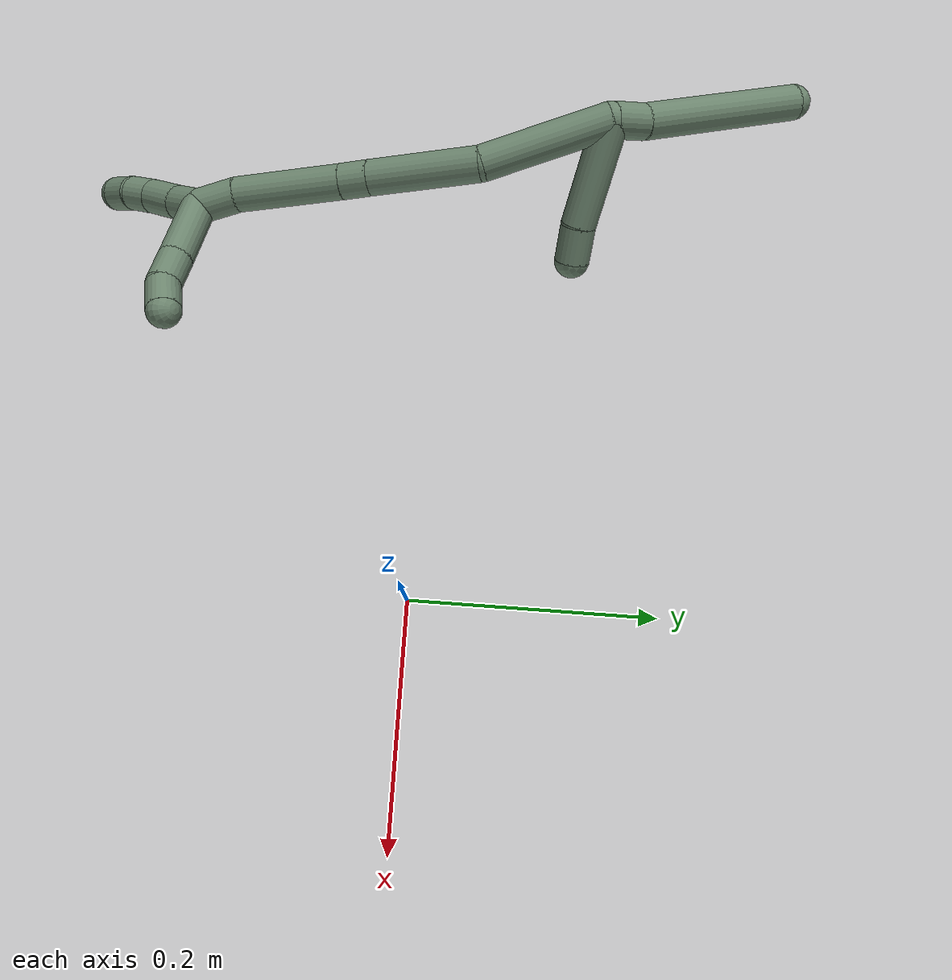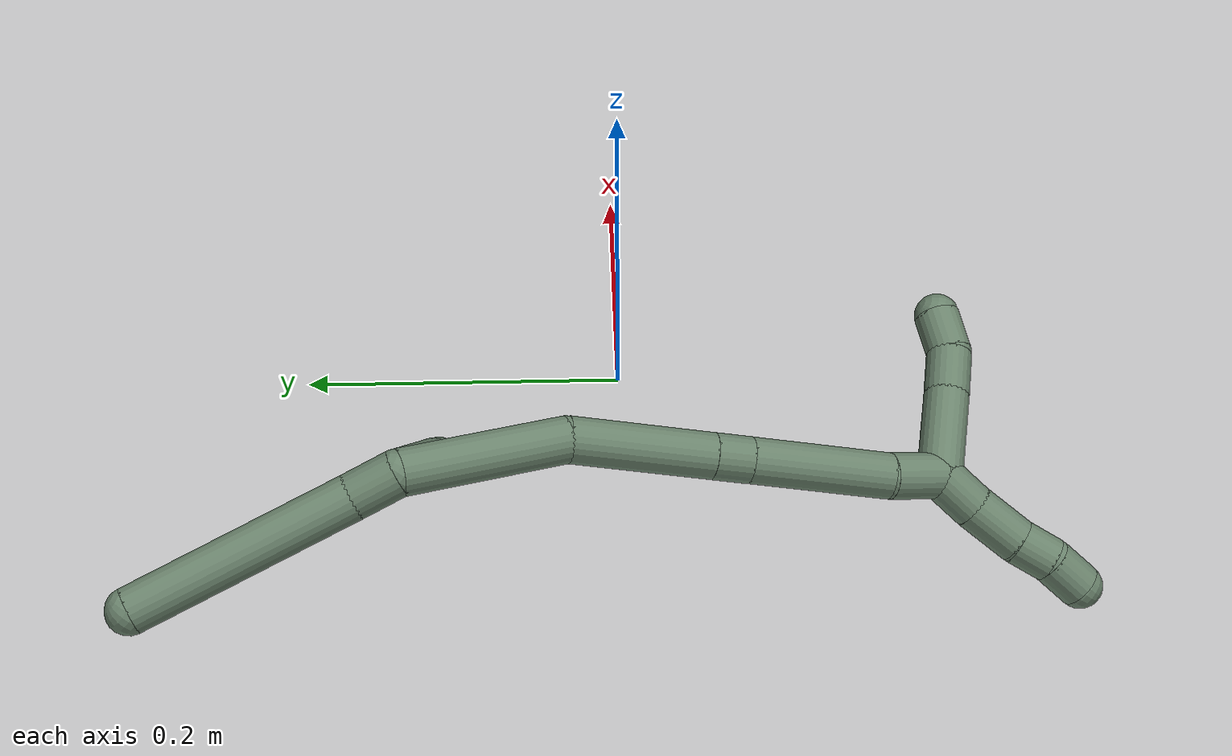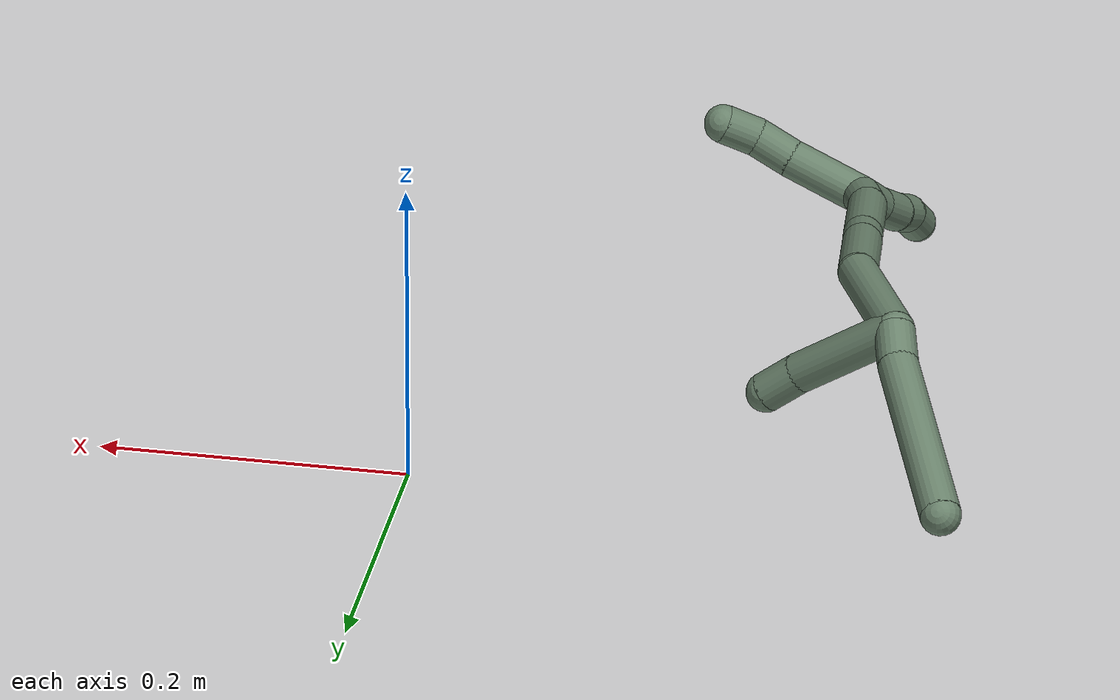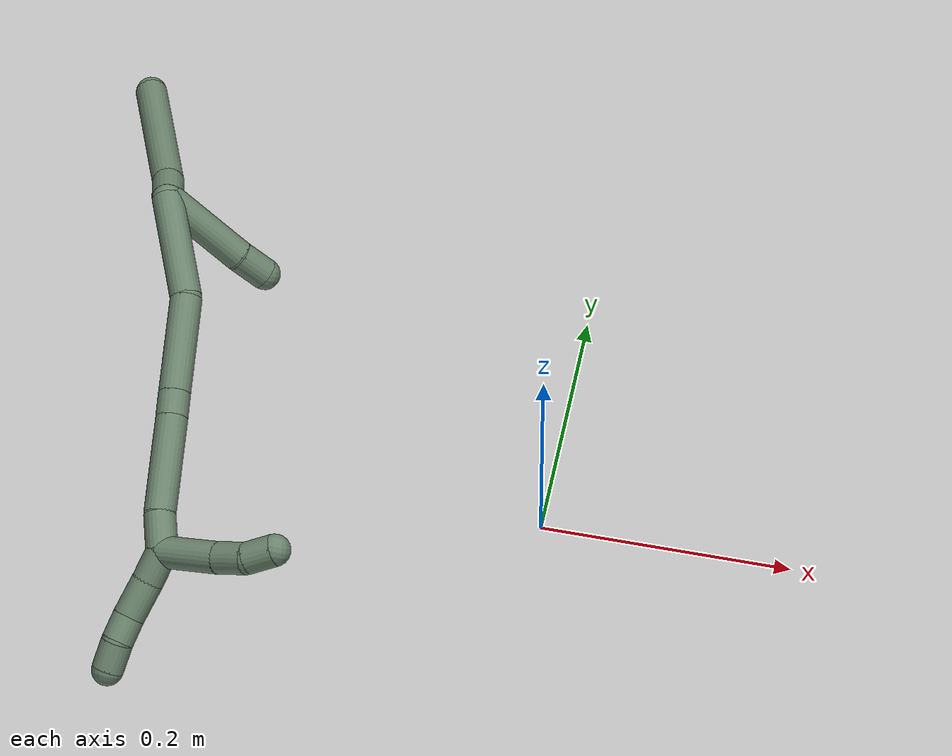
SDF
<sdf version="1.7">
 <world name="default">
  <model name="17">
   <static>0</static>
   <link name="17">
    <collision name="collision-cylinder-e_1_2_8">
     <pose>0.004121 0.011134 0.005481 -1.11333 0.320588 -0.200558</pose>
     <geometry><cylinder><radius>0.0125</radius><length>0.026153</length></cylinder></geometry>
     <surface>
      <friction><ode><mu>1.16</mu><mu2>1.16</mu2><slip1>0</slip1><slip2>0</slip2></ode></friction>
      <contact><ode><kp>1e+06</kp><kd>1</kd><max_vel>0</max_vel><min_depth>0.001</min_depth></ode></contact>
     </surface>
    </collision>
    <visual name="visual-cylinder-e_1_2_8">
     <pose>0.004121 0.011134 0.005481 -1.11333 0.320588 -0.200558</pose>
     <geometry><cylinder><radius>0.0125</radius><length>0.026153</length></cylinder></geometry>
     <material><ambient>0.415686 0.509804 0.423529 1</ambient></material>
    </visual>
    <collision name="collision-cylinder-e_2_8_6">
     <pose>0.018593 0.075475 0.040903 -1.05823 0.167957 -0.098362</pose>
     <geometry><cylinder><radius>0.0125</radius><length>0.123847</length></cylinder></geometry>
     <surface>
      <friction><ode><mu>1.16</mu><mu2>1.16</mu2><slip1>0</slip1><slip2>0</slip2></ode></friction>
      <contact><ode><kp>1e+06</kp><kd>1</kd><max_vel>0</max_vel><min_depth>0.001</min_depth></ode></contact>
     </surface>
    </collision>
    <visual name="visual-cylinder-e_2_8_6">
     <pose>0.018593 0.075475 0.040903 -1.05823 0.167957 -0.098362</pose>
     <geometry><cylinder><radius>0.0125</radius><length>0.123847</length></cylinder></geometry>
     <material><ambient>0.415686 0.509804 0.423529 1</ambient></material>
    </visual>
    <collision name="collision-cylinder-e_1_2_9">
     <pose>0.031944 -0.008029 -0.016837 2.69661 1.04228 2.39079</pose>
     <geometry><cylinder><radius>0.0125</radius><length>0.073983</length></cylinder></geometry>
     <surface>
      <friction><ode><mu>1.16</mu><mu2>1.16</mu2><slip1>0</slip1><slip2>0</slip2></ode></friction>
      <contact><ode><kp>1e+06</kp><kd>1</kd><max_vel>0</max_vel><min_depth>0.001</min_depth></ode></contact>
     </surface>
    </collision>
    <visual name="visual-cylinder-e_1_2_9">
     <pose>0.031944 -0.008029 -0.016837 2.69661 1.04228 2.39079</pose>
     <geometry><cylinder><radius>0.0125</radius><length>0.073983</length></cylinder></geometry>
     <material><ambient>0.415686 0.509804 0.423529 1</ambient></material>
    </visual>
    <collision name="collision-cylinder-e_2_9_5">
     <pose>0.075776 -0.01748 -0.038762 2.86921 1.15252 2.72591</pose>
     <geometry><cylinder><radius>0.0125</radius><length>0.026017</length></cylinder></geometry>
     <surface>
      <friction><ode><mu>1.16</mu><mu2>1.16</mu2><slip1>0</slip1><slip2>0</slip2></ode></friction>
      <contact><ode><kp>1e+06</kp><kd>1</kd><max_vel>0</max_vel><min_depth>0.001</min_depth></ode></contact>
     </surface>
    </collision>
    <visual name="visual-cylinder-e_2_9_5">
     <pose>0.075776 -0.01748 -0.038762 2.86921 1.15252 2.72591</pose>
     <geometry><cylinder><radius>0.0125</radius><length>0.026017</length></cylinder></geometry>
     <material><ambient>0.415686 0.509804 0.423529 1</ambient></material>
    </visual>
    <collision name="collision-cylinder-e_1_2_10">
     <pose>0.001849 -0.030551 -0.034499 2.41682 0.040094 0.105668</pose>
     <geometry><cylinder><radius>0.0125</radius><length>0.092239</length></cylinder></geometry>
     <surface>
      <friction><ode><mu>1.16</mu><mu2>1.16</mu2><slip1>0</slip1><slip2>0</slip2></ode></friction>
      <contact><ode><kp>1e+06</kp><kd>1</kd><max_vel>0</max_vel><min_depth>0.001</min_depth></ode></contact>
     </surface>
    </collision>
    <visual name="visual-cylinder-e_1_2_10">
     <pose>0.001849 -0.030551 -0.034499 2.41682 0.040094 0.105668</pose>
     <geometry><cylinder><radius>0.0125</radius><length>0.092239</length></cylinder></geometry>
     <material><ambient>0.415686 0.509804 0.423529 1</ambient></material>
    </visual>
    <collision name="collision-cylinder-e_2_10_11">
     <pose>-0.001027 -0.078107 -0.104227 2.69187 -0.120185 -0.514425</pose>
     <geometry><cylinder><radius>0.0125</radius><length>0.078805</length></cylinder></geometry>
     <surface>
      <friction><ode><mu>1.16</mu><mu2>1.16</mu2><slip1>0</slip1><slip2>0</slip2></ode></friction>
      <contact><ode><kp>1e+06</kp><kd>1</kd><max_vel>0</max_vel><min_depth>0.001</min_depth></ode></contact>
     </surface>
    </collision>
    <visual name="visual-cylinder-e_2_10_11">
     <pose>-0.001027 -0.078107 -0.104227 2.69187 -0.120185 -0.514425</pose>
     <geometry><cylinder><radius>0.0125</radius><length>0.078805</length></cylinder></geometry>
     <material><ambient>0.415686 0.509804 0.423529 1</ambient></material>
    </visual>
    <collision name="collision-cylinder-e_3_11_12">
     <pose>-0.006846 -0.099494 -0.148527 2.69164 -0.108287 -0.465068</pose>
     <geometry><cylinder><radius>0.0125</radius><length>0.020266</length></cylinder></geometry>
     <surface>
      <friction><ode><mu>1.16</mu><mu2>1.16</mu2><slip1>0</slip1><slip2>0</slip2></ode></friction>
      <contact><ode><kp>1e+06</kp><kd>1</kd><max_vel>0</max_vel><min_depth>0.001</min_depth></ode></contact>
     </surface>
    </collision>
    <visual name="visual-cylinder-e_3_11_12">
     <pose>-0.006846 -0.099494 -0.148527 2.69164 -0.108287 -0.465068</pose>
     <geometry><cylinder><radius>0.0125</radius><length>0.020266</length></cylinder></geometry>
     <material><ambient>0.415686 0.509804 0.423529 1</ambient></material>
    </visual>
    <collision name="collision-cylinder-e_4_12_13">
     <pose>-0.012729 -0.120805 -0.192642 2.69156 -0.122398 -0.523147</pose>
     <geometry><cylinder><radius>0.0125</radius><length>0.078424</length></cylinder></geometry>
     <surface>
      <friction><ode><mu>1.16</mu><mu2>1.16</mu2><slip1>0</slip1><slip2>0</slip2></ode></friction>
      <contact><ode><kp>1e+06</kp><kd>1</kd><max_vel>0</max_vel><min_depth>0.001</min_depth></ode></contact>
     </surface>
    </collision>
    <visual name="visual-cylinder-e_4_12_13">
     <pose>-0.012729 -0.120805 -0.192642 2.69156 -0.122398 -0.523147</pose>
     <geometry><cylinder><radius>0.0125</radius><length>0.078424</length></cylinder></geometry>
     <material><ambient>0.415686 0.509804 0.423529 1</ambient></material>
    </visual>
    <collision name="collision-cylinder-e_5_13_1">
     <pose>-0.01711 -0.145535 -0.240646 2.59979 0.026863 0.096654</pose>
     <geometry><cylinder><radius>0.0125</radius><length>0.030266</length></cylinder></geometry>
     <surface>
      <friction><ode><mu>1.16</mu><mu2>1.16</mu2><slip1>0</slip1><slip2>0</slip2></ode></friction>
      <contact><ode><kp>1e+06</kp><kd>1</kd><max_vel>0</max_vel><min_depth>0.001</min_depth></ode></contact>
     </surface>
    </collision>
    <visual name="visual-cylinder-e_5_13_1">
     <pose>-0.01711 -0.145535 -0.240646 2.59979 0.026863 0.096654</pose>
     <geometry><cylinder><radius>0.0125</radius><length>0.030266</length></cylinder></geometry>
     <material><ambient>0.415686 0.509804 0.423529 1</ambient></material>
    </visual>
    <collision name="collision-cylinder-e_1_1_14">
     <pose>-0.019042 -0.15133 -0.265886 -2.97963 -0.185759 1.70816</pose>
     <geometry><cylinder><radius>0.0125</radius><length>0.025318</length></cylinder></geometry>
     <surface>
      <friction><ode><mu>1.16</mu><mu2>1.16</mu2><slip1>0</slip1><slip2>0</slip2></ode></friction>
      <contact><ode><kp>1e+06</kp><kd>1</kd><max_vel>0</max_vel><min_depth>0.001</min_depth></ode></contact>
     </surface>
    </collision>
    <visual name="visual-cylinder-e_1_1_14">
     <pose>-0.019042 -0.15133 -0.265886 -2.97963 -0.185759 1.70816</pose>
     <geometry><cylinder><radius>0.0125</radius><length>0.025318</length></cylinder></geometry>
     <material><ambient>0.415686 0.509804 0.423529 1</ambient></material>
    </visual>
    <collision name="collision-cylinder-e_2_14_15">
     <pose>-0.025301 -0.147886 -0.292963 -3.04472 -0.257897 2.42609</pose>
     <geometry><cylinder><radius>0.0125</radius><length>0.030754</length></cylinder></geometry>
     <surface>
      <friction><ode><mu>1.16</mu><mu2>1.16</mu2><slip1>0</slip1><slip2>0</slip2></ode></friction>
      <contact><ode><kp>1e+06</kp><kd>1</kd><max_vel>0</max_vel><min_depth>0.001</min_depth></ode></contact>
     </surface>
    </collision>
    <visual name="visual-cylinder-e_2_14_15">
     <pose>-0.025301 -0.147886 -0.292963 -3.04472 -0.257897 2.42609</pose>
     <geometry><cylinder><radius>0.0125</radius><length>0.030754</length></cylinder></geometry>
     <material><ambient>0.415686 0.509804 0.423529 1</ambient></material>
    </visual>
    <collision name="collision-cylinder-e_3_15_16">
     <pose>-0.031978 -0.146957 -0.317871 3.09121 -0.265667 -2.76881</pose>
     <geometry><cylinder><radius>0.0125</radius><length>0.020979</length></cylinder></geometry>
     <surface>
      <friction><ode><mu>1.16</mu><mu2>1.16</mu2><slip1>0</slip1><slip2>0</slip2></ode></friction>
      <contact><ode><kp>1e+06</kp><kd>1</kd><max_vel>0</max_vel><min_depth>0.001</min_depth></ode></contact>
     </surface>
    </collision>
    <visual name="visual-cylinder-e_3_15_16">
     <pose>-0.031978 -0.146957 -0.317871 3.09121 -0.265667 -2.76881</pose>
     <geometry><cylinder><radius>0.0125</radius><length>0.020979</length></cylinder></geometry>
     <material><ambient>0.415686 0.509804 0.423529 1</ambient></material>
    </visual>
    <collision name="collision-cylinder-e_4_16_4">
     <pose>-0.035601 -0.146125 -0.339342 -3.02404 -0.075802 1.14482</pose>
     <geometry><cylinder><radius>0.0125</radius><length>0.022948</length></cylinder></geometry>
     <surface>
      <friction><ode><mu>1.16</mu><mu2>1.16</mu2><slip1>0</slip1><slip2>0</slip2></ode></friction>
      <contact><ode><kp>1e+06</kp><kd>1</kd><max_vel>0</max_vel><min_depth>0.001</min_depth></ode></contact>
     </surface>
    </collision>
    <visual name="visual-cylinder-e_4_16_4">
     <pose>-0.035601 -0.146125 -0.339342 -3.02404 -0.075802 1.14482</pose>
     <geometry><cylinder><radius>0.0125</radius><length>0.022948</length></cylinder></geometry>
     <material><ambient>0.415686 0.509804 0.423529 1</ambient></material>
    </visual>
    <collision name="collision-cylinder-e_1_1_17">
     <pose>-0.003551 -0.174434 -0.249613 1.38367 0.549588 0.458884</pose>
     <geometry><cylinder><radius>0.0125</radius><length>0.050361</length></cylinder></geometry>
     <surface>
      <friction><ode><mu>1.16</mu><mu2>1.16</mu2><slip1>0</slip1><slip2>0</slip2></ode></friction>
      <contact><ode><kp>1e+06</kp><kd>1</kd><max_vel>0</max_vel><min_depth>0.001</min_depth></ode></contact>
     </surface>
    </collision>
    <visual name="visual-cylinder-e_1_1_17">
     <pose>-0.003551 -0.174434 -0.249613 1.38367 0.549588 0.458884</pose>
     <geometry><cylinder><radius>0.0125</radius><length>0.050361</length></cylinder></geometry>
     <material><ambient>0.415686 0.509804 0.423529 1</ambient></material>
    </visual>
    <collision name="collision-cylinder-e_2_17_18">
     <pose>0.015586 -0.206621 -0.242604 1.30537 0.480071 0.369929</pose>
     <geometry><cylinder><radius>0.0125</radius><length>0.025914</length></cylinder></geometry>
     <surface>
      <friction><ode><mu>1.16</mu><mu2>1.16</mu2><slip1>0</slip1><slip2>0</slip2></ode></friction>
      <contact><ode><kp>1e+06</kp><kd>1</kd><max_vel>0</max_vel><min_depth>0.001</min_depth></ode></contact>
     </surface>
    </collision>
    <visual name="visual-cylinder-e_2_17_18">
     <pose>0.015586 -0.206621 -0.242604 1.30537 0.480071 0.369929</pose>
     <geometry><cylinder><radius>0.0125</radius><length>0.025914</length></cylinder></geometry>
     <material><ambient>0.415686 0.509804 0.423529 1</ambient></material>
    </visual>
    <collision name="collision-cylinder-e_3_18_3">
     <pose>0.028439 -0.225459 -0.233801 0.929179 0.617592 0.317069</pose>
     <geometry><cylinder><radius>0.0125</radius><length>0.023725</length></cylinder></geometry>
     <surface>
      <friction><ode><mu>1.16</mu><mu2>1.16</mu2><slip1>0</slip1><slip2>0</slip2></ode></friction>
      <contact><ode><kp>1e+06</kp><kd>1</kd><max_vel>0</max_vel><min_depth>0.001</min_depth></ode></contact>
     </surface>
    </collision>
    <visual name="visual-cylinder-e_3_18_3">
     <pose>0.028439 -0.225459 -0.233801 0.929179 0.617592 0.317069</pose>
     <geometry><cylinder><radius>0.0125</radius><length>0.023725</length></cylinder></geometry>
     <material><ambient>0.415686 0.509804 0.423529 1</ambient></material>
    </visual>
    <collision name="collision-sphere-3">
     <pose>0.035309 -0.233207 -0.228013 0 -0 0</pose>
     <geometry><sphere><radius>0.0125</radius></sphere></geometry>
     <surface>
      <friction><ode><mu>1.16</mu><mu2>1.16</mu2><slip1>0</slip1><slip2>0</slip2></ode></friction>
      <contact><ode><kp>1e+06</kp><kd>1</kd><max_vel>0</max_vel><min_depth>0.001</min_depth></ode></contact>
     </surface>
    </collision>
    <visual name="visual-sphere-3">
     <pose>0.035309 -0.233207 -0.228013 0 -0 0</pose>
     <geometry><sphere><radius>0.0125</radius></sphere></geometry>
     <material><ambient>0.415686 0.509804 0.423529 1</ambient></material>
    </visual>
    <collision name="collision-sphere-10">
     <pose>0.003697 -0.061102 -0.068999 0 -0 0</pose>
     <geometry><sphere><radius>0.0125</radius></sphere></geometry>
     <surface>
      <friction><ode><mu>1.16</mu><mu2>1.16</mu2><slip1>0</slip1><slip2>0</slip2></ode></friction>
      <contact><ode><kp>1e+06</kp><kd>1</kd><max_vel>0</max_vel><min_depth>0.001</min_depth></ode></contact>
     </surface>
    </collision>
    <visual name="visual-sphere-10">
     <pose>0.003697 -0.061102 -0.068999 0 -0 0</pose>
     <geometry><sphere><radius>0.0125</radius></sphere></geometry>
     <material><ambient>0.415686 0.509804 0.423529 1</ambient></material>
    </visual>
    <collision name="collision-sphere-5">
     <pose>0.087663 -0.018901 -0.043851 0 -0 0</pose>
     <geometry><sphere><radius>0.0125</radius></sphere></geometry>
     <surface>
      <friction><ode><mu>1.16</mu><mu2>1.16</mu2><slip1>0</slip1><slip2>0</slip2></ode></friction>
      <contact><ode><kp>1e+06</kp><kd>1</kd><max_vel>0</max_vel><min_depth>0.001</min_depth></ode></contact>
     </surface>
    </collision>
    <visual name="visual-sphere-5">
     <pose>0.087663 -0.018901 -0.043851 0 -0 0</pose>
     <geometry><sphere><radius>0.0125</radius></sphere></geometry>
     <material><ambient>0.415686 0.509804 0.423529 1</ambient></material>
    </visual>
    <collision name="collision-sphere-6">
     <pose>0.028945 0.128681 0.070844 0 -0 0</pose>
     <geometry><sphere><radius>0.0125</radius></sphere></geometry>
     <surface>
      <friction><ode><mu>1.16</mu><mu2>1.16</mu2><slip1>0</slip1><slip2>0</slip2></ode></friction>
      <contact><ode><kp>1e+06</kp><kd>1</kd><max_vel>0</max_vel><min_depth>0.001</min_depth></ode></contact>
     </surface>
    </collision>
    <visual name="visual-sphere-6">
     <pose>0.028945 0.128681 0.070844 0 -0 0</pose>
     <geometry><sphere><radius>0.0125</radius></sphere></geometry>
     <material><ambient>0.415686 0.509804 0.423529 1</ambient></material>
    </visual>
    <collision name="collision-sphere-9">
     <pose>0.063889 -0.016058 -0.033673 0 -0 0</pose>
     <geometry><sphere><radius>0.0125</radius></sphere></geometry>
     <surface>
      <friction><ode><mu>1.16</mu><mu2>1.16</mu2><slip1>0</slip1><slip2>0</slip2></ode></friction>
      <contact><ode><kp>1e+06</kp><kd>1</kd><max_vel>0</max_vel><min_depth>0.001</min_depth></ode></contact>
     </surface>
    </collision>
    <visual name="visual-sphere-9">
     <pose>0.063889 -0.016058 -0.033673 0 -0 0</pose>
     <geometry><sphere><radius>0.0125</radius></sphere></geometry>
     <material><ambient>0.415686 0.509804 0.423529 1</ambient></material>
    </visual>
    <collision name="collision-sphere-2">
     <geometry><sphere><radius>0.0125</radius></sphere></geometry>
     <surface>
      <friction><ode><mu>1.16</mu><mu2>1.16</mu2><slip1>0</slip1><slip2>0</slip2></ode></friction>
      <contact><ode><kp>1e+06</kp><kd>1</kd><max_vel>0</max_vel><min_depth>0.001</min_depth></ode></contact>
     </surface>
    </collision>
    <visual name="visual-sphere-2">
     <geometry><sphere><radius>0.0125</radius></sphere></geometry>
     <material><ambient>0.415686 0.509804 0.423529 1</ambient></material>
    </visual>
    <collision name="collision-sphere-8">
     <pose>0.008241 0.022268 0.010963 0 -0 0</pose>
     <geometry><sphere><radius>0.0125</radius></sphere></geometry>
     <surface>
      <friction><ode><mu>1.16</mu><mu2>1.16</mu2><slip1>0</slip1><slip2>0</slip2></ode></friction>
      <contact><ode><kp>1e+06</kp><kd>1</kd><max_vel>0</max_vel><min_depth>0.001</min_depth></ode></contact>
     </surface>
    </collision>
    <visual name="visual-sphere-8">
     <pose>0.008241 0.022268 0.010963 0 -0 0</pose>
     <geometry><sphere><radius>0.0125</radius></sphere></geometry>
     <material><ambient>0.415686 0.509804 0.423529 1</ambient></material>
    </visual>
    <collision name="collision-sphere-11">
     <pose>-0.005751 -0.095113 -0.139456 0 -0 0</pose>
     <geometry><sphere><radius>0.0125</radius></sphere></geometry>
     <surface>
      <friction><ode><mu>1.16</mu><mu2>1.16</mu2><slip1>0</slip1><slip2>0</slip2></ode></friction>
      <contact><ode><kp>1e+06</kp><kd>1</kd><max_vel>0</max_vel><min_depth>0.001</min_depth></ode></contact>
     </surface>
    </collision>
    <visual name="visual-sphere-11">
     <pose>-0.005751 -0.095113 -0.139456 0 -0 0</pose>
     <geometry><sphere><radius>0.0125</radius></sphere></geometry>
     <material><ambient>0.415686 0.509804 0.423529 1</ambient></material>
    </visual>
    <collision name="collision-sphere-12">
     <pose>-0.007941 -0.103875 -0.157598 0 -0 0</pose>
     <geometry><sphere><radius>0.0125</radius></sphere></geometry>
     <surface>
      <friction><ode><mu>1.16</mu><mu2>1.16</mu2><slip1>0</slip1><slip2>0</slip2></ode></friction>
      <contact><ode><kp>1e+06</kp><kd>1</kd><max_vel>0</max_vel><min_depth>0.001</min_depth></ode></contact>
     </surface>
    </collision>
    <visual name="visual-sphere-12">
     <pose>-0.007941 -0.103875 -0.157598 0 -0 0</pose>
     <geometry><sphere><radius>0.0125</radius></sphere></geometry>
     <material><ambient>0.415686 0.509804 0.423529 1</ambient></material>
    </visual>
    <collision name="collision-sphere-13">
     <pose>-0.017516 -0.137734 -0.227685 0 -0 0</pose>
     <geometry><sphere><radius>0.0125</radius></sphere></geometry>
     <surface>
      <friction><ode><mu>1.16</mu><mu2>1.16</mu2><slip1>0</slip1><slip2>0</slip2></ode></friction>
      <contact><ode><kp>1e+06</kp><kd>1</kd><max_vel>0</max_vel><min_depth>0.001</min_depth></ode></contact>
     </surface>
    </collision>
    <visual name="visual-sphere-13">
     <pose>-0.017516 -0.137734 -0.227685 0 -0 0</pose>
     <geometry><sphere><radius>0.0125</radius></sphere></geometry>
     <material><ambient>0.415686 0.509804 0.423529 1</ambient></material>
    </visual>
    <collision name="collision-sphere-1">
     <pose>-0.016704 -0.153336 -0.253608 0 -0 0</pose>
     <geometry><sphere><radius>0.0125</radius></sphere></geometry>
     <surface>
      <friction><ode><mu>1.16</mu><mu2>1.16</mu2><slip1>0</slip1><slip2>0</slip2></ode></friction>
      <contact><ode><kp>1e+06</kp><kd>1</kd><max_vel>0</max_vel><min_depth>0.001</min_depth></ode></contact>
     </surface>
    </collision>
    <visual name="visual-sphere-1">
     <pose>-0.016704 -0.153336 -0.253608 0 -0 0</pose>
     <geometry><sphere><radius>0.0125</radius></sphere></geometry>
     <material><ambient>0.415686 0.509804 0.423529 1</ambient></material>
    </visual>
    <collision name="collision-sphere-18">
     <pose>0.02157 -0.217711 -0.239589 0 -0 0</pose>
     <geometry><sphere><radius>0.0125</radius></sphere></geometry>
     <surface>
      <friction><ode><mu>1.16</mu><mu2>1.16</mu2><slip1>0</slip1><slip2>0</slip2></ode></friction>
      <contact><ode><kp>1e+06</kp><kd>1</kd><max_vel>0</max_vel><min_depth>0.001</min_depth></ode></contact>
     </surface>
    </collision>
    <visual name="visual-sphere-18">
     <pose>0.02157 -0.217711 -0.239589 0 -0 0</pose>
     <geometry><sphere><radius>0.0125</radius></sphere></geometry>
     <material><ambient>0.415686 0.509804 0.423529 1</ambient></material>
    </visual>
    <collision name="collision-sphere-14">
     <pose>-0.02138 -0.149324 -0.278164 0 -0 0</pose>
     <geometry><sphere><radius>0.0125</radius></sphere></geometry>
     <surface>
      <friction><ode><mu>1.16</mu><mu2>1.16</mu2><slip1>0</slip1><slip2>0</slip2></ode></friction>
      <contact><ode><kp>1e+06</kp><kd>1</kd><max_vel>0</max_vel><min_depth>0.001</min_depth></ode></contact>
     </surface>
    </collision>
    <visual name="visual-sphere-14">
     <pose>-0.02138 -0.149324 -0.278164 0 -0 0</pose>
     <geometry><sphere><radius>0.0125</radius></sphere></geometry>
     <material><ambient>0.415686 0.509804 0.423529 1</ambient></material>
    </visual>
    <collision name="collision-sphere-15">
     <pose>-0.029223 -0.146448 -0.307762 0 -0 0</pose>
     <geometry><sphere><radius>0.0125</radius></sphere></geometry>
     <surface>
      <friction><ode><mu>1.16</mu><mu2>1.16</mu2><slip1>0</slip1><slip2>0</slip2></ode></friction>
      <contact><ode><kp>1e+06</kp><kd>1</kd><max_vel>0</max_vel><min_depth>0.001</min_depth></ode></contact>
     </surface>
    </collision>
    <visual name="visual-sphere-15">
     <pose>-0.029223 -0.146448 -0.307762 0 -0 0</pose>
     <geometry><sphere><radius>0.0125</radius></sphere></geometry>
     <material><ambient>0.415686 0.509804 0.423529 1</ambient></material>
    </visual>
    <collision name="collision-sphere-16">
     <pose>-0.034732 -0.147467 -0.32798 0 -0 0</pose>
     <geometry><sphere><radius>0.0125</radius></sphere></geometry>
     <surface>
      <friction><ode><mu>1.16</mu><mu2>1.16</mu2><slip1>0</slip1><slip2>0</slip2></ode></friction>
      <contact><ode><kp>1e+06</kp><kd>1</kd><max_vel>0</max_vel><min_depth>0.001</min_depth></ode></contact>
     </surface>
    </collision>
    <visual name="visual-sphere-16">
     <pose>-0.034732 -0.147467 -0.32798 0 -0 0</pose>
     <geometry><sphere><radius>0.0125</radius></sphere></geometry>
     <material><ambient>0.415686 0.509804 0.423529 1</ambient></material>
    </visual>
    <collision name="collision-sphere-4">
     <pose>-0.036469 -0.144783 -0.350704 0 -0 0</pose>
     <geometry><sphere><radius>0.0125</radius></sphere></geometry>
     <surface>
      <friction><ode><mu>1.16</mu><mu2>1.16</mu2><slip1>0</slip1><slip2>0</slip2></ode></friction>
      <contact><ode><kp>1e+06</kp><kd>1</kd><max_vel>0</max_vel><min_depth>0.001</min_depth></ode></contact>
     </surface>
    </collision>
    <visual name="visual-sphere-4">
     <pose>-0.036469 -0.144783 -0.350704 0 -0 0</pose>
     <geometry><sphere><radius>0.0125</radius></sphere></geometry>
     <material><ambient>0.415686 0.509804 0.423529 1</ambient></material>
    </visual>
    <collision name="collision-sphere-17">
     <pose>0.009602 -0.195531 -0.245618 0 -0 0</pose>
     <geometry><sphere><radius>0.0125</radius></sphere></geometry>
     <surface>
      <friction><ode><mu>1.16</mu><mu2>1.16</mu2><slip1>0</slip1><slip2>0</slip2></ode></friction>
      <contact><ode><kp>1e+06</kp><kd>1</kd><max_vel>0</max_vel><min_depth>0.001</min_depth></ode></contact>
     </surface>
    </collision>
    <visual name="visual-sphere-17">
     <pose>0.009602 -0.195531 -0.245618 0 -0 0</pose>
     <geometry><sphere><radius>0.0125</radius></sphere></geometry>
     <material><ambient>0.415686 0.509804 0.423529 1</ambient></material>
    </visual>
    <inertial>
     <pose>0.004442 -0.067443 -0.117926 0 -0 0</pose>
     <mass>0.75</mass>
     <inertia>
      <ixx>0.000289</ixx>
      <ixy>0</ixy>
      <ixz>0</ixz>
      <iyy>-2.7e-05</iyy>
      <iyz>0</iyz>
      <izz>-0.00012</izz>
     </inertia>
    </inertial>
   </link>
   <pose>-0.321441 0.118099 0.197423 -0.766712 0.506374 0.381666</pose>
  </model>
 </world>
</sdf>
